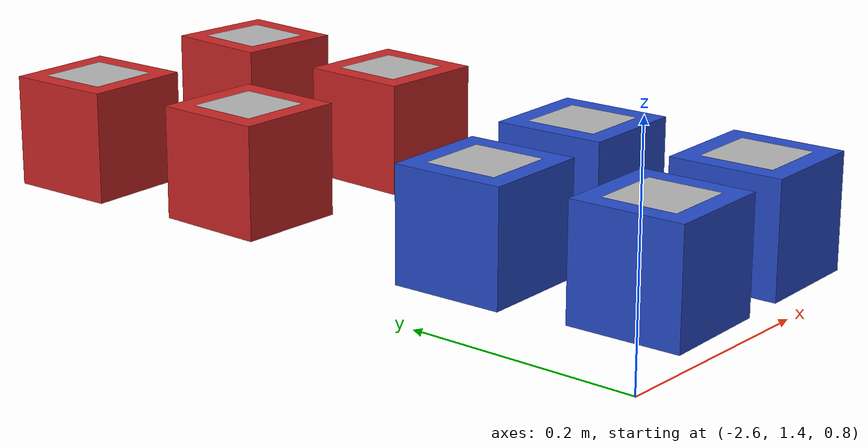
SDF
<sdf version="1.6">
 <world name="default">
  <model name="ground_plane">
   <static>1</static>
   <link name="link">
    <collision name="collision">
     <geometry><plane><normal>0 0 1</normal><size>100 100</size></plane></geometry>
     <surface><friction><ode><mu>100</mu><mu2>50</mu2></ode></friction></surface>
    </collision>
    <visual name="visual">
     <cast_shadows>0</cast_shadows>
     <geometry><plane><normal>0 0 1</normal><size>100 100</size></plane></geometry>
     <material>
      <script><uri>file://media/materials/scripts/gazebo.material</uri><name>Gazebo/Grey</name></script>
     </material>
    </visual>
   </link>
  </model>
  <model name="cube1">
   <pose>-2.28276 2.06939 0.846457 0 0 -0.065452</pose>
   <link name="cube1_link">
    <inertial>
     <mass>2</mass>
     <inertia>
      <ixx>0.0166667</ixx>
      <ixy>0</ixy>
      <ixz>0</ixz>
      <iyy>0.0166667</iyy>
      <iyz>0</iyz>
      <izz>0.0166667</izz>
     </inertia>
    </inertial>
    <collision name="collision"><geometry><box><size>0.1 0.1 0.1</size></box></geometry></collision>
    <visual name="visual">
     <geometry><box><size>0.1 0.1 0.1</size></box></geometry>
     <material>
      <script><name>Gazebo/Red</name><uri>file://media/materials/scripts/gazebo.material</uri></script>
     </material>
    </visual>
   </link>
   <link name="tag1">
    <pose>0 0 0.05 0 -0 0</pose>
    <collision name="collision"><geometry><box><size>0.065 0.065 0.0001</size></box></geometry></collision>
    <visual name="visual">
     <cast_shadows>0</cast_shadows>
     <geometry><box><size>0.065 0.065 0.0001</size></box></geometry>
     <material>
      <script>
       <uri>model://artag/materials/scripts</uri>
       <uri>model://artag/materials/textures</uri>
       <name>material/artag0</name>
      </script>
     </material>
    </visual>
    <inertial>
     <inertia><ixx>1</ixx><ixy>0</ixy><ixz>0</ixz><iyy>1</iyy><iyz>0</iyz><izz>1</izz></inertia>
     <mass>1</mass>
    </inertial>
   </link>
   <joint name="cube1_tag1" type="fixed"><parent>cube1_link</parent><child>tag1</child></joint>
  </model>
  <model name="cube2">
   <pose>-2.484 2.06894 0.846457 0 -0 0.033409</pose>
   <link name="cube2_link">
    <inertial>
     <mass>2</mass>
     <inertia>
      <ixx>0.0166667</ixx>
      <ixy>0</ixy>
      <ixz>0</ixz>
      <iyy>0.0166667</iyy>
      <iyz>0</iyz>
      <izz>0.0166667</izz>
     </inertia>
    </inertial>
    <collision name="collision"><geometry><box><size>0.1 0.1 0.1</size></box></geometry></collision>
    <visual name="visual">
     <geometry><box><size>0.1 0.1 0.1</size></box></geometry>
     <material>
      <script><name>Gazebo/Red</name><uri>file://media/materials/scripts/gazebo.material</uri></script>
     </material>
    </visual>
   </link>
   <link name="tag2">
    <pose>0 0 0.05 0 -0 0</pose>
    <collision name="collision"><geometry><box><size>0.065 0.065 0.0001</size></box></geometry></collision>
    <visual name="visual">
     <cast_shadows>0</cast_shadows>
     <geometry><box><size>0.065 0.065 0.0001</size></box></geometry>
     <material>
      <script>
       <uri>model://artag/materials/scripts</uri>
       <uri>model://artag/materials/textures</uri>
       <name>material/artag1</name>
      </script>
     </material>
    </visual>
    <inertial>
     <inertia><ixx>1</ixx><ixy>0</ixy><ixz>0</ixz><iyy>1</iyy><iyz>0</iyz><izz>1</izz></inertia>
     <mass>1</mass>
    </inertial>
   </link>
   <joint name="cube2_tag2" type="fixed"><parent>cube2_link</parent><child>tag2</child></joint>
  </model>
  <model name="cube3">
   <pose>-2.29298 1.88673 0.846457 0 0 -0.033795</pose>
   <link name="cube3_link">
    <inertial>
     <mass>2</mass>
     <inertia>
      <ixx>0.0166667</ixx>
      <ixy>0</ixy>
      <ixz>0</ixz>
      <iyy>0.0166667</iyy>
      <iyz>0</iyz>
      <izz>0.0166667</izz>
     </inertia>
    </inertial>
    <collision name="collision"><geometry><box><size>0.1 0.1 0.1</size></box></geometry></collision>
    <visual name="visual">
     <geometry><box><size>0.1 0.1 0.1</size></box></geometry>
     <material>
      <script><name>Gazebo/Red</name><uri>file://media/materials/scripts/gazebo.material</uri></script>
     </material>
    </visual>
   </link>
   <link name="tag3">
    <pose>0 0 0.05 0 -0 0</pose>
    <collision name="collision"><geometry><box><size>0.065 0.065 0.0001</size></box></geometry></collision>
    <visual name="visual">
     <cast_shadows>0</cast_shadows>
     <geometry><box><size>0.065 0.065 0.0001</size></box></geometry>
     <material>
      <script>
       <uri>model://artag/materials/scripts</uri>
       <uri>model://artag/materials/textures</uri>
       <name>material/artag2</name>
      </script>
     </material>
    </visual>
    <inertial>
     <inertia><ixx>1</ixx><ixy>0</ixy><ixz>0</ixz><iyy>1</iyy><iyz>0</iyz><izz>1</izz></inertia>
     <mass>1</mass>
    </inertial>
   </link>
   <joint name="cube3_tag3" type="fixed"><parent>cube3_link</parent><child>tag3</child></joint>
  </model>
  <model name="cube4">
   <pose>-2.47237 1.89207 0.846457 0 0 -0.013298</pose>
   <link name="cube4_link">
    <inertial>
     <mass>2</mass>
     <inertia>
      <ixx>0.0166667</ixx>
      <ixy>0</ixy>
      <ixz>0</ixz>
      <iyy>0.0166667</iyy>
      <iyz>0</iyz>
      <izz>0.0166667</izz>
     </inertia>
    </inertial>
    <collision name="collision"><geometry><box><size>0.1 0.1 0.1</size></box></geometry></collision>
    <visual name="visual">
     <geometry><box><size>0.1 0.1 0.1</size></box></geometry>
     <material>
      <script><name>Gazebo/Red</name><uri>file://media/materials/scripts/gazebo.material</uri></script>
     </material>
    </visual>
   </link>
   <link name="tag4">
    <pose>0 0 0.05 0 -0 0</pose>
    <collision name="collision"><geometry><box><size>0.065 0.065 0.0001</size></box></geometry></collision>
    <visual name="visual">
     <cast_shadows>0</cast_shadows>
     <geometry><box><size>0.065 0.065 0.0001</size></box></geometry>
     <material>
      <script>
       <uri>model://artag/materials/scripts</uri>
       <uri>model://artag/materials/textures</uri>
       <name>material/artag3</name>
      </script>
     </material>
    </visual>
    <inertial>
     <inertia><ixx>1</ixx><ixy>0</ixy><ixz>0</ixz><iyy>1</iyy><iyz>0</iyz><izz>1</izz></inertia>
     <mass>1</mass>
    </inertial>
   </link>
   <joint name="cube4_tag4" type="fixed"><parent>cube4_link</parent><child>tag4</child></joint>
  </model>
  <model name="blue_cube_1">
   <pose>-2.4743 1.63296 0.846457 0 -0 0.033788</pose>
   <link name="blue_cube_1_link">
    <inertial>
     <mass>2</mass>
     <inertia>
      <ixx>0.0166667</ixx>
      <ixy>0</ixy>
      <ixz>0</ixz>
      <iyy>0.0166667</iyy>
      <iyz>0</iyz>
      <izz>0.0166667</izz>
     </inertia>
    </inertial>
    <collision name="collision"><geometry><box><size>0.1 0.1 0.1</size></box></geometry></collision>
    <visual name="visual">
     <geometry><box><size>0.1 0.1 0.1</size></box></geometry>
     <material>
      <script><name>Gazebo/Blue</name><uri>file://media/materials/scripts/gazebo.material</uri></script>
     </material>
    </visual>
   </link>
   <link name="tag10">
    <pose>0 0 0.05 0 -0 0</pose>
    <collision name="collision"><geometry><box><size>0.065 0.065 0.0001</size></box></geometry></collision>
    <visual name="visual">
     <cast_shadows>0</cast_shadows>
     <geometry><box><size>0.065 0.065 0.0001</size></box></geometry>
     <material>
      <script>
       <uri>model://artag/materials/scripts</uri>
       <uri>model://artag/materials/textures</uri>
       <name>material/artag9</name>
      </script>
     </material>
    </visual>
    <inertial>
     <inertia><ixx>1</ixx><ixy>0</ixy><ixz>0</ixz><iyy>1</iyy><iyz>0</iyz><izz>1</izz></inertia>
     <mass>1</mass>
    </inertial>
   </link>
   <joint name="blue_cube_1_tag10" type="fixed"><parent>blue_cube_1_link</parent><child>tag10</child></joint>
  </model>
  <model name="blue_cube_2">
   <pose>-2.3258 1.64728 0.846457 0 -0 0.03402</pose>
   <link name="blue_cube_2_link">
    <inertial>
     <mass>2</mass>
     <inertia>
      <ixx>0.0166667</ixx>
      <ixy>0</ixy>
      <ixz>0</ixz>
      <iyy>0.0166667</iyy>
      <iyz>0</iyz>
      <izz>0.0166667</izz>
     </inertia>
    </inertial>
    <collision name="collision"><geometry><box><size>0.1 0.1 0.1</size></box></geometry></collision>
    <visual name="visual">
     <geometry><box><size>0.1 0.1 0.1</size></box></geometry>
     <material>
      <script><name>Gazebo/Blue</name><uri>file://media/materials/scripts/gazebo.material</uri></script>
     </material>
    </visual>
   </link>
   <link name="tag11">
    <pose>0 0 0.05 0 -0 0</pose>
    <collision name="collision"><geometry><box><size>0.065 0.065 0.0001</size></box></geometry></collision>
    <visual name="visual">
     <cast_shadows>0</cast_shadows>
     <geometry><box><size>0.065 0.065 0.0001</size></box></geometry>
     <material>
      <script>
       <uri>model://artag/materials/scripts</uri>
       <uri>model://artag/materials/textures</uri>
       <name>material/artag10</name>
      </script>
     </material>
    </visual>
    <inertial>
     <inertia><ixx>1</ixx><ixy>0</ixy><ixz>0</ixz><iyy>1</iyy><iyz>0</iyz><izz>1</izz></inertia>
     <mass>1</mass>
    </inertial>
   </link>
   <joint name="blue_cube_2_tag11" type="fixed"><parent>blue_cube_2_link</parent><child>tag11</child></joint>
  </model>
  <model name="blue_cube_3">
   <pose>-2.45988 1.47655 0.846457 0 -0 0.034172</pose>
   <link name="blue_cube_3_link">
    <inertial>
     <mass>2</mass>
     <inertia>
      <ixx>0.0166667</ixx>
      <ixy>0</ixy>
      <ixz>0</ixz>
      <iyy>0.0166667</iyy>
      <iyz>0</iyz>
      <izz>0.0166667</izz>
     </inertia>
    </inertial>
    <collision name="collision"><geometry><box><size>0.1 0.1 0.1</size></box></geometry></collision>
    <visual name="visual">
     <geometry><box><size>0.1 0.1 0.1</size></box></geometry>
     <material>
      <script><name>Gazebo/Blue</name><uri>file://media/materials/scripts/gazebo.material</uri></script>
     </material>
    </visual>
   </link>
   <link name="tag12">
    <pose>0 0 0.05 0 -0 0</pose>
    <collision name="collision"><geometry><box><size>0.065 0.065 0.0001</size></box></geometry></collision>
    <visual name="visual">
     <cast_shadows>0</cast_shadows>
     <geometry><box><size>0.065 0.065 0.0001</size></box></geometry>
     <material>
      <script>
       <uri>model://artag/materials/scripts</uri>
       <uri>model://artag/materials/textures</uri>
       <name>material/artag11</name>
      </script>
     </material>
    </visual>
    <inertial>
     <inertia><ixx>1</ixx><ixy>0</ixy><ixz>0</ixz><iyy>1</iyy><iyz>0</iyz><izz>1</izz></inertia>
     <mass>1</mass>
    </inertial>
   </link>
   <joint name="blue_cube_3_tag12" type="fixed"><parent>blue_cube_3_link</parent><child>tag12</child></joint>
  </model>
  <model name="blue_cube_4">
   <pose>-2.31989 1.48186 0.846457 0 -0 0.034306</pose>
   <link name="blue_cube_4_link">
    <inertial>
     <mass>2</mass>
     <inertia>
      <ixx>0.0166667</ixx>
      <ixy>0</ixy>
      <ixz>0</ixz>
      <iyy>0.0166667</iyy>
      <iyz>0</iyz>
      <izz>0.0166667</izz>
     </inertia>
    </inertial>
    <collision name="collision"><geometry><box><size>0.1 0.1 0.1</size></box></geometry></collision>
    <visual name="visual">
     <geometry><box><size>0.1 0.1 0.1</size></box></geometry>
     <material>
      <script><name>Gazebo/Blue</name><uri>file://media/materials/scripts/gazebo.material</uri></script>
     </material>
    </visual>
   </link>
   <link name="tag13">
    <pose>0 0 0.05 0 -0 0</pose>
    <collision name="collision"><geometry><box><size>0.065 0.065 0.0001</size></box></geometry></collision>
    <visual name="visual">
     <cast_shadows>0</cast_shadows>
     <geometry><box><size>0.065 0.065 0.0001</size></box></geometry>
     <material>
      <script>
       <uri>model://artag/materials/scripts</uri>
       <uri>model://artag/materials/textures</uri>
       <name>material/artag12</name>
      </script>
     </material>
    </visual>
    <inertial>
     <inertia><ixx>1</ixx><ixy>0</ixy><ixz>0</ixz><iyy>1</iyy><iyz>0</iyz><izz>1</izz></inertia>
     <mass>1</mass>
    </inertial>
   </link>
   <joint name="blue_cube_4_tag13" type="fixed"><parent>blue_cube_4_link</parent><child>tag13</child></joint>
  </model>
 </world>
</sdf>
